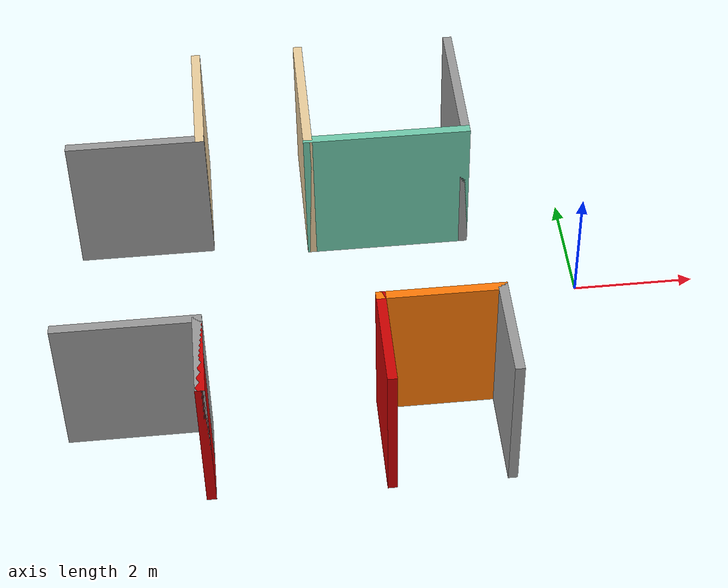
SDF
<?xml version='1.0'?>
<sdf version='1.6'>
  <model name='lang'>
    <pose frame=''>-4.9999 -0.018612 0 0 -0 0</pose>
    <link name='Wall_16'>
      <collision name='Wall_16_Collision'>
        <geometry>
          <box>
            <size>1.75 0.15 2.5</size>
          </box>
        </geometry>
        <pose frame=''>0 0 1.25 0 -0 0</pose>
      </collision>
      <visual name='Wall_16_Visual'>
        <pose frame=''>0 0 1.25 0 -0 0</pose>
        <geometry>
          <box>
            <size>1.75 0.15 2.5</size>
          </box>
        </geometry>
        <material>
          <script>
            <uri>file://media/materials/scripts/gazebo.material</uri>
            <name>Gazebo/Grey</name>
          </script>
          <ambient>0.8 0 0 1</ambient>
        </material>
        <meta>
          <layer>0</layer>
        </meta>
      </visual>
      <pose frame=''>1.4999 -2.99139 0 0 -0 1.5708</pose>
    </link>
    <link name='Wall_17'>
      <collision name='Wall_17_Collision'>
        <geometry>
          <box>
            <size>2 0.15 2.5</size>
          </box>
        </geometry>
        <pose frame=''>0 0 1.25 0 -0 0</pose>
      </collision>
      <visual name='Wall_17_Visual'>
        <pose frame=''>0 0 1.25 0 -0 0</pose>
        <geometry>
          <box>
            <size>2 0.15 2.5</size>
          </box>
        </geometry>
        <material>
          <script>
            <uri>file://media/materials/scripts/gazebo.material</uri>
            <name>Gazebo/Grey</name>
          </script>
          <ambient>0.996078 0.47451 0.0196078 1</ambient>
        </material>
        <meta>
          <layer>0</layer>
        </meta>
      </visual>
      <pose frame=''>2.4249 -2.19139 0 0 -0 0</pose>
    </link>
    <link name='Wall_18'>
      <collision name='Wall_18_Collision'>
        <geometry>
          <box>
            <size>1.75 0.15 2.5</size>
          </box>
        </geometry>
        <pose frame=''>0 0 1.25 0 -0 0</pose>
      </collision>
      <visual name='Wall_18_Visual'>
        <pose frame=''>0 0 1.25 0 -0 0</pose>
        <geometry>
          <box>
            <size>1.75 0.15 2.5</size>
          </box>
        </geometry>
        <material>
          <script>
            <uri>file://media/materials/scripts/gazebo.material</uri>
            <name>Gazebo/Grey</name>
          </script>
          <ambient>1 1 1 1</ambient>
        </material>
        <meta>
          <layer>0</layer>
        </meta>
      </visual>
      <pose frame=''>3.3499 -2.99139 0 0 -0 -1.5708</pose>
    </link>
    <link name='Wall_24'>
      <collision name='Wall_24_Collision'>
        <geometry>
          <box>
            <size>1.5 0.15 2.5</size>
          </box>
        </geometry>
        <pose frame=''>0 0 1.25 0 -0 0</pose>
      </collision>
      <visual name='Wall_24_Visual'>
        <pose frame=''>0 0 1.25 0 -0 0</pose>
        <geometry>
          <box>
            <size>1.5 0.15 2.5</size>
          </box>
        </geometry>
        <material>
          <script>
            <uri>file://media/materials/scripts/gazebo.material</uri>
            <name>Gazebo/Grey</name>
          </script>
          <ambient>1 1 1 1</ambient>
        </material>
        <meta>
          <layer>0</layer>
        </meta>
      </visual>
      <pose frame=''>-1.2499 -3.04635 0 0 -0 -1.5708</pose>
    </link>
    <link name='Wall_25'>
      <collision name='Wall_25_Collision'>
        <geometry>
          <box>
            <size>1.5 0.15 2.5</size>
          </box>
        </geometry>
        <pose frame=''>0 0 1.25 0 -0 0</pose>
      </collision>
      <visual name='Wall_25_Visual'>
        <pose frame=''>0 0 1.25 0 -0 0</pose>
        <geometry>
          <box>
            <size>1.5 0.15 2.5</size>
          </box>
        </geometry>
        <material>
          <script>
            <uri>file://media/materials/scripts/gazebo.material</uri>
            <name>Gazebo/Grey</name>
          </script>
          <ambient>0.8 0 0 1</ambient>
        </material>
        <meta>
          <layer>0</layer>
        </meta>
      </visual>
      <pose frame=''>-1.2499 -3.04635 0 0 -0 1.5708</pose>
    </link>
    <link name='Wall_26'>
      <collision name='Wall_26_Collision'>
        <geometry>
          <box>
            <size>2.25 0.15 2.5</size>
          </box>
        </geometry>
        <pose frame=''>0 0 1.25 0 -0 0</pose>
      </collision>
      <visual name='Wall_26_Visual'>
        <pose frame=''>0 0 1.25 0 -0 0</pose>
        <geometry>
          <box>
            <size>2.25 0.15 2.5</size>
          </box>
        </geometry>
        <material>
          <script>
            <uri>file://media/materials/scripts/gazebo.material</uri>
            <name>Gazebo/Grey</name>
          </script>
          <ambient>1 1 1 1</ambient>
        </material>
        <meta>
          <layer>0</layer>
        </meta>
      </visual>
      <pose frame=''>-2.2999 -2.37135 0 0 -0 3.14159</pose>
    </link>
    <link name='Wall_35'>
      <collision name='Wall_35_Collision'>
        <geometry>
          <box>
            <size>2.5 0.15 2.5</size>
          </box>
        </geometry>
        <pose frame=''>0 0 1.25 0 -0 0</pose>
      </collision>
      <visual name='Wall_35_Visual'>
        <pose frame=''>0 0 1.25 0 -0 0</pose>
        <geometry>
          <box>
            <size>2.5 0.15 2.5</size>
          </box>
        </geometry>
        <material>
          <script>
            <uri>file://media/materials/scripts/gazebo.material</uri>
            <name>Gazebo/Grey</name>
          </script>
          <ambient>0.921569 0.807843 0.615686 1</ambient>
        </material>
        <meta>
          <layer>0</layer>
        </meta>
      </visual>
      <pose frame=''>0.665137 2.61639 0 0 -0 -1.5708</pose>
    </link>
    <link name='Wall_36'>
      <collision name='Wall_36_Collision'>
        <geometry>
          <box>
            <size>2.75 0.15 2.5</size>
          </box>
        </geometry>
        <pose frame=''>0 0 1.25 0 -0 0</pose>
      </collision>
      <visual name='Wall_36_Visual'>
        <pose frame=''>0 0 1.25 0 -0 0</pose>
        <geometry>
          <box>
            <size>2.75 0.15 2.5</size>
          </box>
        </geometry>
        <material>
          <script>
            <uri>file://media/materials/scripts/gazebo.material</uri>
            <name>Gazebo/Grey</name>
          </script>
          <ambient>0.435294 0.796078 0.67451 1</ambient>
        </material>
        <meta>
          <layer>0</layer>
        </meta>
      </visual>
      <pose frame=''>1.96514 1.44139 0 0 -0 0</pose>
    </link>
    <link name='Wall_37'>
      <collision name='Wall_37_Collision'>
        <geometry>
          <box>
            <size>2.5 0.15 2.5</size>
          </box>
        </geometry>
        <pose frame=''>0 0 1.25 0 -0 0</pose>
      </collision>
      <visual name='Wall_37_Visual'>
        <pose frame=''>0 0 1.25 0 -0 0</pose>
        <geometry>
          <box>
            <size>2.5 0.15 2.5</size>
          </box>
        </geometry>
        <material>
          <script>
            <uri>file://media/materials/scripts/gazebo.material</uri>
            <name>Gazebo/Grey</name>
          </script>
          <ambient>1 1 1 1</ambient>
        </material>
        <meta>
          <layer>0</layer>
        </meta>
      </visual>
      <pose frame=''>3.26514 2.61639 0 0 -0 1.5708</pose>
    </link>
    <link name='Wall_39'>
      <collision name='Wall_39_Collision'>
        <geometry>
          <box>
            <size>2.25 0.15 2.5</size>
          </box>
        </geometry>
        <pose frame=''>0 0 1.25 0 -0 0</pose>
      </collision>
      <visual name='Wall_39_Visual'>
        <pose frame=''>0 0 1.25 0 -0 0</pose>
        <geometry>
          <box>
            <size>2.25 0.15 2.5</size>
          </box>
        </geometry>
        <material>
          <script>
            <uri>file://media/materials/scripts/gazebo.material</uri>
            <name>Gazebo/Grey</name>
          </script>
          <ambient>0.921569 0.807843 0.615686 1</ambient>
        </material>
        <meta>
          <layer>0</layer>
        </meta>
      </visual>
      <pose frame=''>-1.08474 2.70116 0 0 -0 -1.5708</pose>
    </link>
    <link name='Wall_42'>
      <collision name='Wall_42_Collision'>
        <geometry>
          <box>
            <size>2.25 0.15 2.5</size>
          </box>
        </geometry>
        <pose frame=''>0 0 1.25 0 -0 0</pose>
      </collision>
      <visual name='Wall_42_Visual'>
        <pose frame=''>0 0 1.25 0 -0 0</pose>
        <geometry>
          <box>
            <size>2.25 0.15 2.5</size>
          </box>
        </geometry>
        <material>
          <script>
            <uri>file://media/materials/scripts/gazebo.material</uri>
            <name>Gazebo/Grey</name>
          </script>
          <ambient>1 1 1 1</ambient>
        </material>
        <meta>
          <layer>0</layer>
        </meta>
      </visual>
      <pose frame=''>-2.13474 1.65116 0 0 -0 3.14159</pose>
    </link>
    <static>1</static>
  </model>
</sdf>
